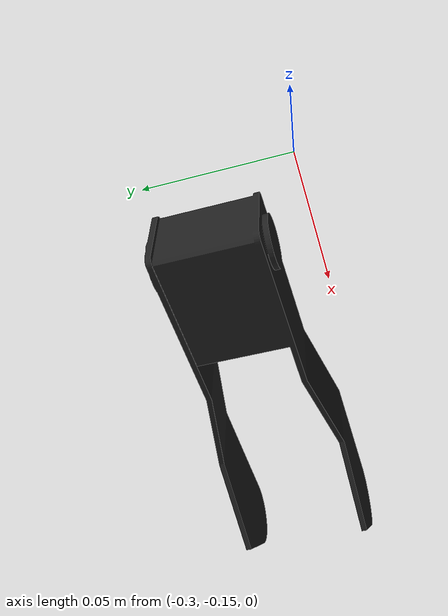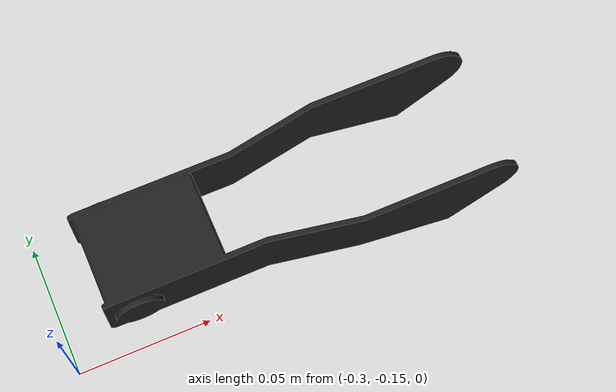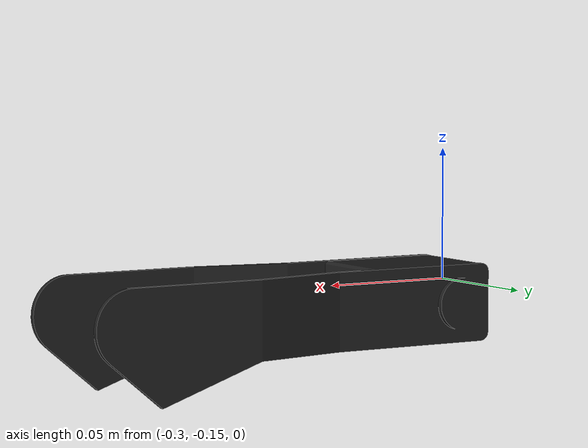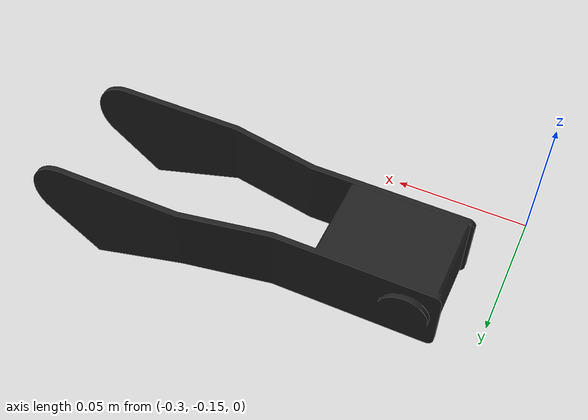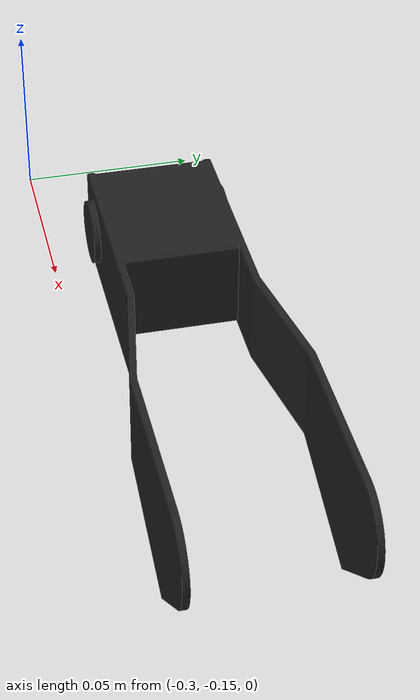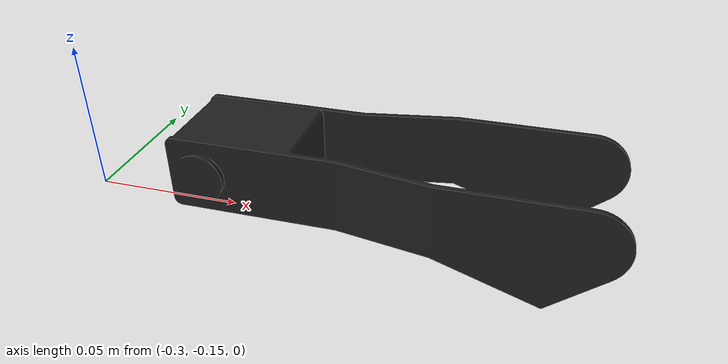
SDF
<?xml version="1.0"?>
<sdf version="1.9">
  <model name="arm">

    <link name="link">
      <inertial>
        <mass>0.024</mass>
        <inertia>
          <ixx>1.30e-6</ixx>  <ixy>0</ixy>  <ixz>0</ixz>
          <iyy>2.89e-5</iyy>  <iyz>0</iyz>
          <izz>3.01e-5</izz>
        </inertia>
      </inertial>

      <collision name="collision">
        <geometry>
          <box><size>0.120 0.025 0.005</size></box>
        </geometry>
      </collision>

      <visual name="visual">
        <pose>-0.1346 -0.1153 -0.0025 0 0 0</pose>
        <geometry>
          <mesh>
            <uri>model://arm/arm.stl</uri>
            <scale>1 1 1</scale>
          </mesh>
        </geometry>
        <material>
          <ambient>0.08 0.08 0.08 1</ambient>
          <diffuse>0.12 0.12 0.12 1</diffuse>
          <specular>0.3 0.3 0.3 1</specular>
        </material>
      </visual>
    </link>

  </model>
</sdf>
